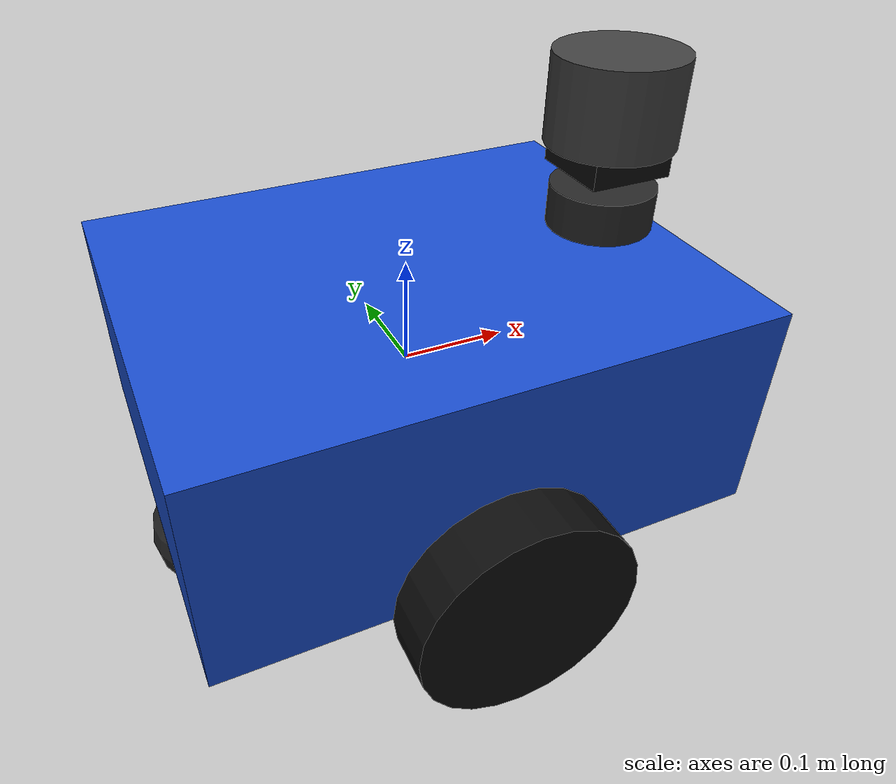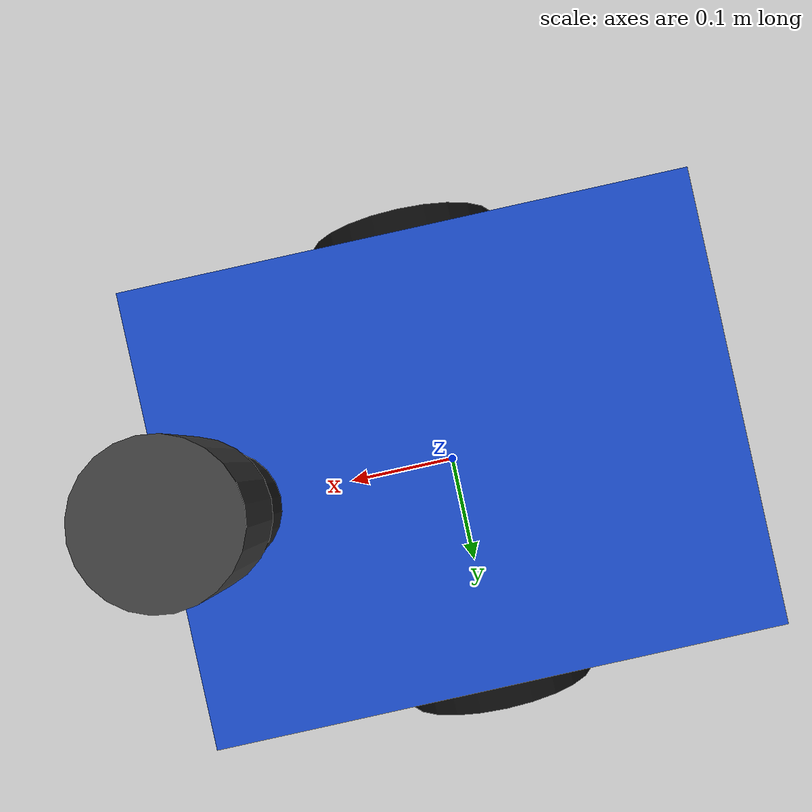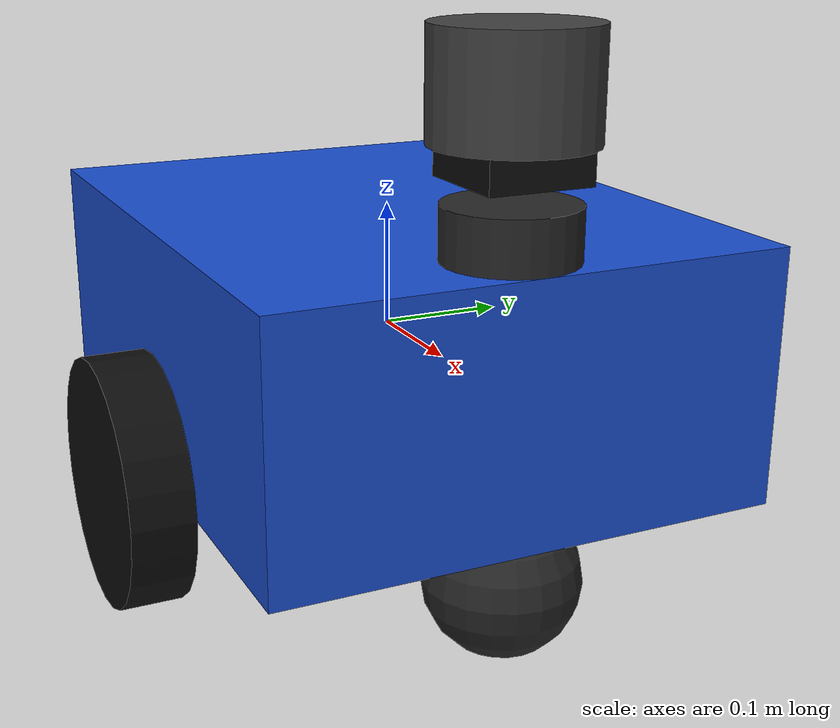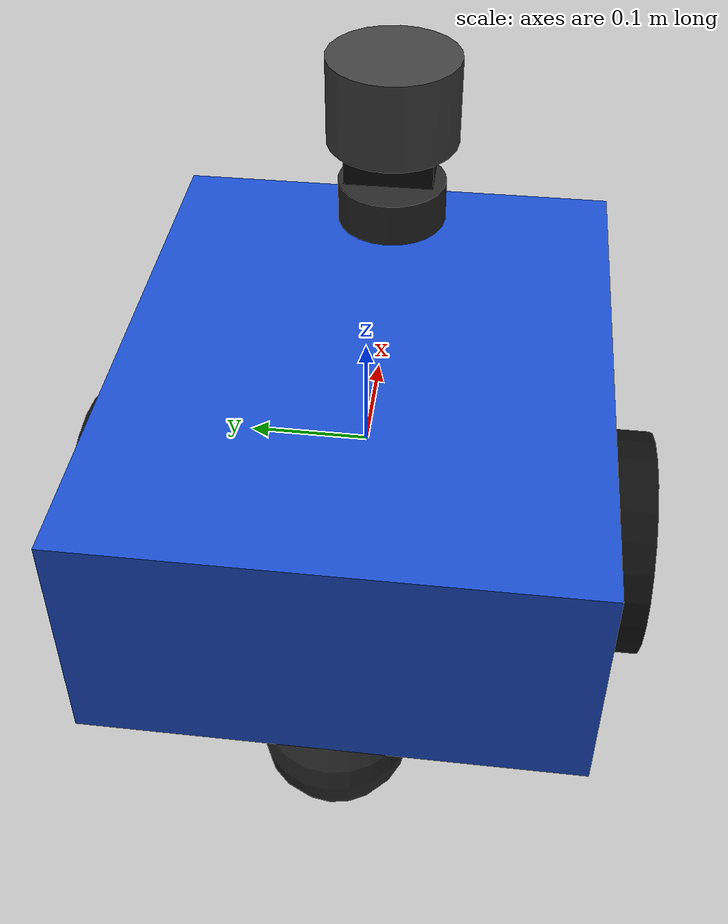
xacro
<?xml version="1.0"?>

<robot xmlns:xacro="http://www.ros.org/wiki/xacro"
       name="pointcloud_robot">

  <!-- Robot Dimensions                                  -->

  <xacro:property name="base_length" value="0.50"/>
  <xacro:property name="base_width"  value="0.40"/>
  <xacro:property name="base_height" value="0.20"/>

  <xacro:property name="wheel_radius" value="0.10"/>
  <xacro:property name="wheel_width"  value="0.05"/>

  <xacro:property name="caster_radius" value="0.06"/>

  <!-- Base Link                                         -->

  <link name="base_link">

    <visual>

      <origin xyz="0 0 0"/>

      <geometry>
        <box size="${base_length} ${base_width} ${base_height}"/>
      </geometry>

      <material name="blue">
        <color rgba="0.1 0.3 0.8 1.0"/>
      </material>

    </visual>

    <collision>

      <origin xyz="0 0 0"/>

      <geometry>
        <box size="${base_length} ${base_width} ${base_height}"/>
      </geometry>

    </collision>

    <inertial>

      <mass value="10.0"/>

      <inertia
        ixx="0.20"
        ixy="0.0"
        ixz="0.0"
        iyy="0.30"
        iyz="0.0"
        izz="0.40"/>

    </inertial>

  </link>

  <!-- Left Drive Wheel                                 -->

  <link name="left_wheel">

    <visual>

      <origin rpy="1.5708 0 0"/>

      <geometry>
        <cylinder
          radius="${wheel_radius}"
          length="${wheel_width}"/>
      </geometry>

      <material name="black">
        <color rgba="0.05 0.05 0.05 1.0"/>
      </material>

    </visual>

    <collision>

      <origin rpy="1.5708 0 0"/>

      <geometry>
        <cylinder
          radius="${wheel_radius}"
          length="${wheel_width}"/>
      </geometry>

    </collision>

    <inertial>

      <mass value="1.0"/>

      <inertia
        ixx="0.01"
        ixy="0.0"
        ixz="0.0"
        iyy="0.01"
        iyz="0.0"
        izz="0.01"/>

    </inertial>

  </link>

  <!-- Right Drive Wheel                                -->

  <link name="right_wheel">

    <visual>

      <origin rpy="1.5708 0 0"/>

      <geometry>
        <cylinder
          radius="${wheel_radius}"
          length="${wheel_width}"/>
      </geometry>

      <material name="black">
        <color rgba="0.05 0.05 0.05 1.0"/>
      </material>

    </visual>

    <collision>

      <origin rpy="1.5708 0 0"/>

      <geometry>
        <cylinder
          radius="${wheel_radius}"
          length="${wheel_width}"/>
      </geometry>

    </collision>

    <inertial>

      <mass value="1.0"/>

      <inertia
        ixx="0.01"
        ixy="0.0"
        ixz="0.0"
        iyy="0.01"
        iyz="0.0"
        izz="0.01"/>

    </inertial>

  </link>

  <!-- Caster Wheel 1                                 -->

  <link name="caster_wheel1">

    <visual>

      <origin xyz="0 0 0"/>

      <geometry>
        <sphere radius="${caster_radius}"/>
      </geometry>

      <material name="caster_material">
        <color rgba="0.15 0.15 0.15 1.0"/>
      </material>

    </visual>

    <collision>

      <origin xyz="0 0 0"/>

      <geometry>
        <sphere radius="${caster_radius}"/>
      </geometry>

    </collision>

    <inertial>

      <mass value="0.5"/>

      <inertia
        ixx="0.002"
        ixy="0.0"
        ixz="0.0"
        iyy="0.002"
        iyz="0.0"
        izz="0.002"/>

    </inertial>

  </link>

  <!-- Caster Wheel 2                                 -->

  <link name="caster_wheel2">

    <visual>

      <origin xyz="0 0 0"/>

      <geometry>
        <sphere radius="${caster_radius}"/>
      </geometry>

      <material name="caster_material">
        <color rgba="0.15 0.15 0.15 1.0"/>
      </material>

    </visual>

    <collision>

      <origin xyz="0 0 0"/>

      <geometry>
        <sphere radius="${caster_radius}"/>
      </geometry>

    </collision>

    <inertial>

      <mass value="0.5"/>

      <inertia
        ixx="0.002"
        ixy="0.0"
        ixz="0.0"
        iyy="0.002"
        iyz="0.0"
        izz="0.002"/>

    </inertial>

  </link>

  <!-- Left Wheel Joint                                 -->

  <joint
    name="left_wheel_joint"
    type="continuous">

    <parent link="base_link"/>
    <child link="left_wheel"/>

    <origin
      xyz="0 0.225 -0.10"
      rpy="0 0 0"/>

    <axis xyz="0 1 0"/>

  </joint>

  <!-- Right Wheel Joint                                -->

  <joint
    name="right_wheel_joint"
    type="continuous">

    <parent link="base_link"/>
    <child link="right_wheel"/>

    <origin
      xyz="0 -0.225 -0.10"
      rpy="0 0 0"/>

    <axis xyz="0 1 0"/>

  </joint>

  <!-- Caster Joint                                     -->

  <joint
    name="caster_joint1"
    type="fixed">

    <parent link="base_link"/>
    <child link="caster_wheel1"/>

    <!-- Rear of robot -->
    <origin
      xyz="-0.20 0 -0.14"
      rpy="0 0 0"/>

  </joint>

  <!-- Caster Joint                                     -->

  <joint
    name="caster_joint2"
    type="fixed">

    <parent link="base_link"/>
    <child link="caster_wheel2"/>

    <!-- Rear of robot -->
    <origin
      xyz="0.20 0 -0.14"
      rpy="0 0 0"/>

  </joint>

  <link name="laser_link">

    <visual>
      <origin xyz="0 0 0"/>
      <geometry>
          <cylinder radius="0.05" length="0.04"/>
      </geometry>

      <material name="lidar_material">
        <color rgba="0.15 0.15 0.15 1.0"/>
      </material>
    </visual>

    <collision>
      <origin xyz="0 0 0"/>
      <geometry>
        <cylinder radius="0.05" length="0.04"/>
      </geometry>
    </collision>

  </link>

  <joint name="laser_joint" type="fixed">
    <parent link="base_link"/>
    <child link="laser_link"/>
    <origin xyz="0.20 0 0.12" rpy="0 0 0"/>
  </joint>

<!-- 3D LiDAR Link                                     -->

<link name="lidar_3d_link">

  <visual>

    <origin xyz="0 0 0"/>

    <geometry>
      <cylinder
        radius="0.06"
        length="0.08"/>
    </geometry>

    <material name="lidar3d_material">
      <color rgba="0.25 0.25 0.25 1.0"/>
    </material>

  </visual>

  <collision>

    <origin xyz="0 0 0"/>

    <geometry>
      <cylinder
        radius="0.06"
        length="0.08"/>
    </geometry>

  </collision>

</link>

<joint name="lidar_3d_joint" type="fixed">
  <parent link="base_link"/>
  <child link="lidar_3d_link"/>
  <origin xyz="0.20 0 0.22" rpy="0 0 0"/>
</joint>

    <!-- Depth Camera Link                                -->

  <link name="camera_link">

    <visual>

      <origin xyz="0 0 0"/>

      <geometry>
        <box size="0.08 0.08 0.05"/>
      </geometry>

      <material name="camera_material">
        <color rgba="0.05 0.05 0.05 1.0"/>
      </material>

    </visual>

    <collision>

      <origin xyz="0 0 0"/>

      <geometry>
        <box size="0.08 0.08 0.05"/>
      </geometry>

    </collision>

    <inertial>

      <mass value="0.1"/>

      <inertia
        ixx="0.0001"
        ixy="0.0"
        ixz="0.0"
        iyy="0.0001"
        iyz="0.0"
        izz="0.0001"/>

    </inertial>

  </link>

  <!-- Camera Joint                                     -->

  <joint
    name="camera_joint"
    type="fixed">

    <parent link="base_link"/>
    <child link="camera_link"/>

    <!-- Camera mounted at front/top of robot -->
    <origin
      xyz="0.20 0 0.18"
      rpy="0 0 0"/>

  </joint>

  <!-- Gazebo Depth Camera                              -->

  <gazebo reference="camera_link">

</gazebo>

<!-- Gazebo 2D LiDAR                                   -->

<gazebo reference="laser_link">

  <sensor name="lidar_2d" type="gpu_lidar">

    <pose>0 0 0 0 0 0</pose>

    <topic>/scan</topic>

    <gz_frame_id>laser_link</gz_frame_id>

    <update_rate>10</update_rate>

    <always_on>true</always_on>

    <visualize>true</visualize>

    <lidar>

      <scan>

        <horizontal>

          <!-- 360 degree scan -->
          <samples>720</samples>

          <resolution>1</resolution>

          <min_angle>-3.14159265</min_angle>

          <max_angle>3.14159265</max_angle>

        </horizontal>

        <vertical>

          <!-- Single horizontal layer -->
          <samples>1</samples>

          <resolution>1</resolution>

          <min_angle>0</min_angle>

          <max_angle>0</max_angle>

        </vertical>

      </scan>

      <range>

        <min>0.10</min>

        <max>12.0</max>

        <resolution>0.01</resolution>

      </range>

    </lidar>

  </sensor>

</gazebo>

<!-- Gazebo 3D LiDAR                                   -->

<gazebo reference="lidar_3d_link">

  <sensor name="lidar_3d" type="gpu_lidar">

    <pose>0 0 0 0 0 0</pose>

    <topic>/lidar_3d/points</topic>

    <gz_frame_id>lidar_3d_link</gz_frame_id>

    <update_rate>10</update_rate>

    <always_on>true</always_on>

    <visualize>true</visualize>

    <lidar>

      <scan>

        <horizontal>

          <samples>1024</samples>

          <resolution>1</resolution>

          <min_angle>-3.14159265</min_angle>

          <max_angle>3.14159265</max_angle>

        </horizontal>

        <vertical>

          <samples>32</samples>

          <resolution>1</resolution>

          <min_angle>-0.523599</min_angle>

          <max_angle>0.523599</max_angle>

        </vertical>

      </scan>

      <range>

        <min>0.10</min>

        <max>20.0</max>

        <resolution>0.01</resolution>

      </range>

    </lidar>

  </sensor>

</gazebo>

  <!-- Gazebo Harmonic Differential Drive               -->

  <gazebo>

    <plugin
      filename="gz-sim-diff-drive-system"
      name="gz::sim::systems::DiffDrive">

      <!-- Wheel joints -->
      <left_joint>left_wheel_joint</left_joint>
      <right_joint>right_wheel_joint</right_joint>

      <!-- Wheel geometry -->
      <wheel_separation>0.45</wheel_separation>
      <wheel_radius>0.10</wheel_radius>

      <!-- ROS/Gazebo topics -->
      <topic>/cmd_vel</topic>
      <odom_topic>/odom</odom_topic>

      <!-- Frames -->
      <frame_id>odom</frame_id>
      <child_frame_id>base_link</child_frame_id>

      <!-- Odometry publication -->
      <odom_publish_frequency>30</odom_publish_frequency>

      <!-- TF -->
      <tf_topic>/tf</tf_topic>

    </plugin>

  </gazebo>

</robot>
